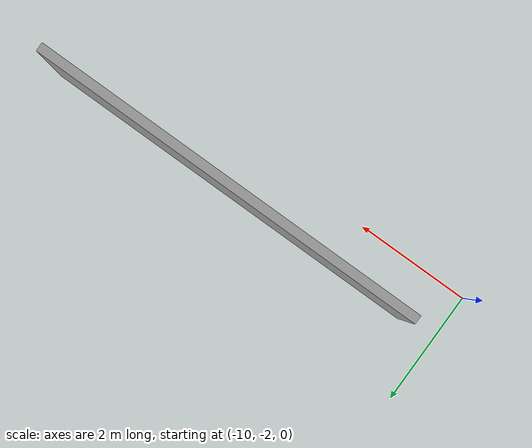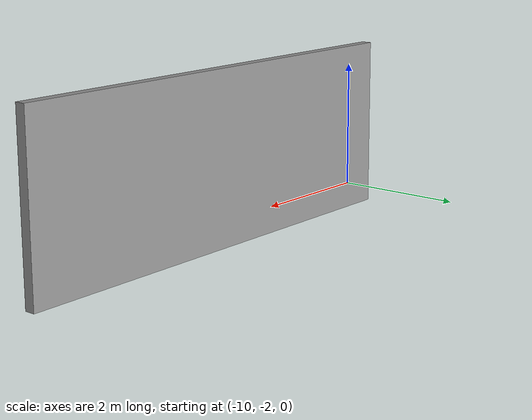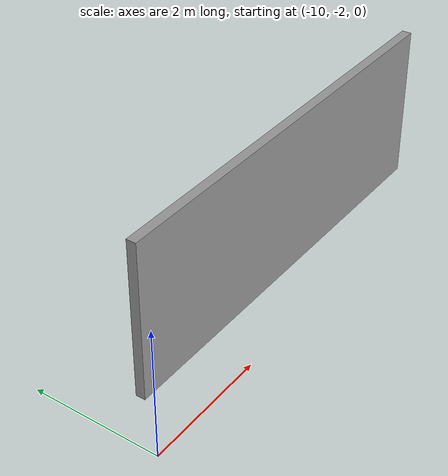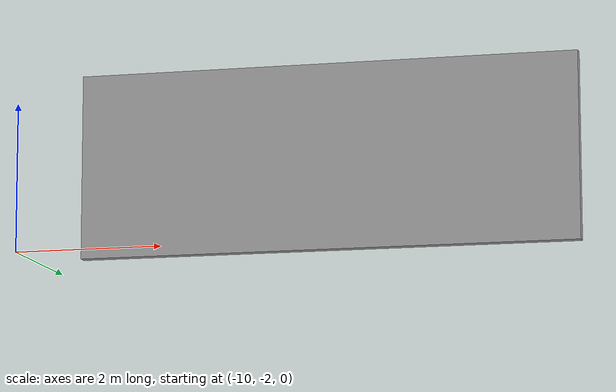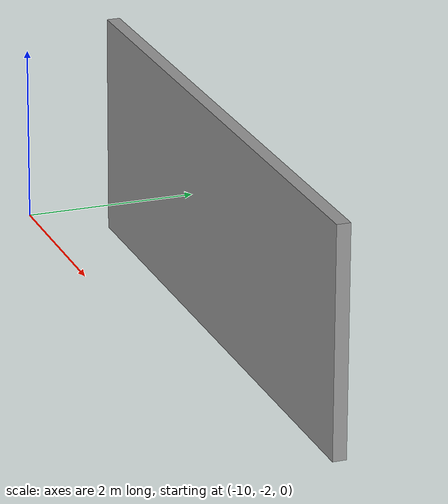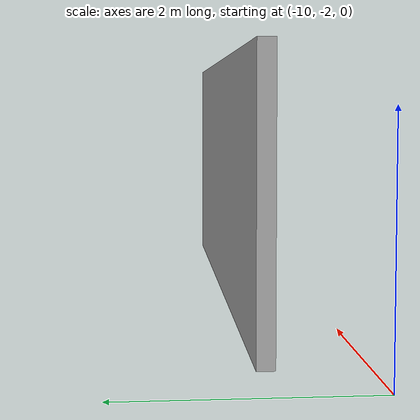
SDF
<?xml version='1.0'?>
<sdf version='1.6'>
  <model name='wall_01'>
    <pose frame=''>-5.95985 -1.1921 0 0 -0 0</pose>
    <link name='Wall_0'>
      <collision name='Wall_0_Collision'>
        <geometry>
          <box>
            <size>6.75 0.15 2.5</size>
          </box>
        </geometry>
        <pose frame=''>0 0 1.25 0 -0 0</pose>
      </collision>
      <visual name='Wall_0_Visual'>
        <pose frame=''>0 0 1.25 0 -0 0</pose>
        <geometry>
          <box>
            <size>6.75 0.15 2.5</size>
          </box>
        </geometry>
        <material>
          <script>
            <uri>file://media/materials/scripts/gazebo.material</uri>
            <name>Gazebo/Grey</name>
          </script>
          <ambient>1 1 1 1</ambient>
        </material>
        <meta>
          <layer>0</layer>
        </meta>
      </visual>
      <pose frame=''>0 0 0 0 -0 0</pose>
    </link>
    <static>1</static>
  </model>
</sdf>
